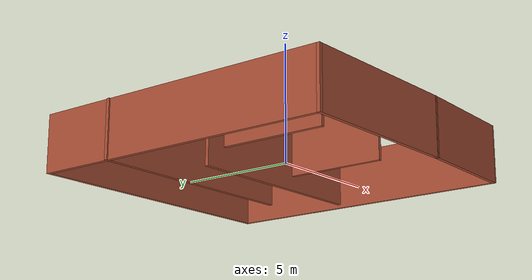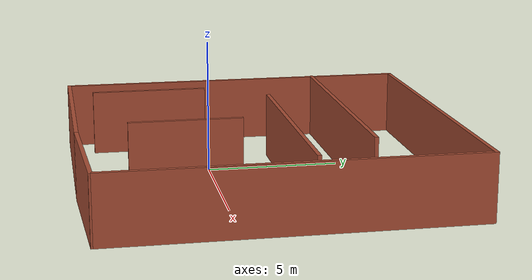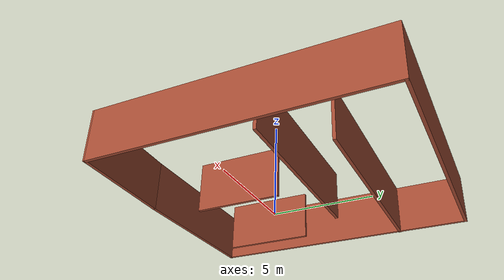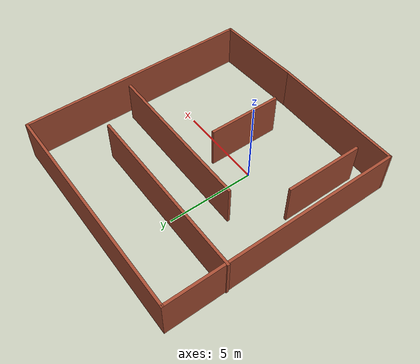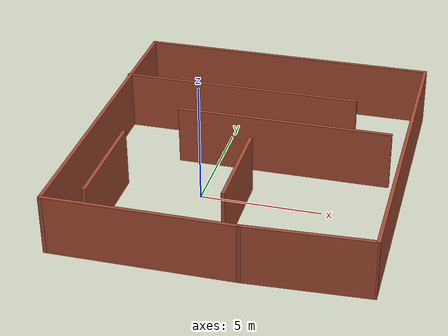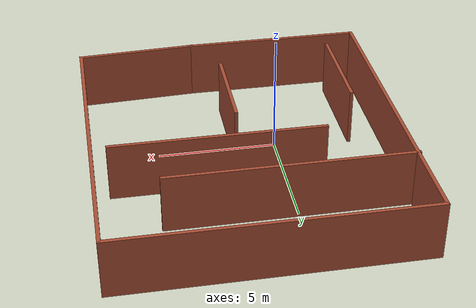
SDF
<?xml version='1.0'?>
<sdf version='1.7'>
  <model name='maze_map.world'>
    <pose>1.60349 1.70817 0 0 -0 0</pose>
    <link name='Wall_0'>
      <collision name='Wall_0_Collision'>
        <geometry>
          <box>
            <size>7.75 0.15 2.5</size>
          </box>
        </geometry>
        <pose>0 0 1.25 0 -0 0</pose>
      </collision>
      <visual name='Wall_0_Visual'>
        <pose>0 0 1.25 0 -0 0</pose>
        <geometry>
          <box>
            <size>7.75 0.15 2.5</size>
          </box>
        </geometry>
        <material>
          <script>
            <uri>file://media/materials/scripts/gazebo.material</uri>
            <name>Gazebo/Bricks</name>
          </script>
          <ambient>1 1 1 1</ambient>
        </material>
        <meta>
          <layer>0</layer>
        </meta>
      </visual>
      <pose>-2.47349 -6.79817 0 0 -0 3.14159</pose>
    </link>
    <link name='Wall_11'>
      <collision name='Wall_11_Collision'>
        <geometry>
          <box>
            <size>4.25 0.15 2.5</size>
          </box>
        </geometry>
        <pose>0 0 1.25 0 -0 0</pose>
      </collision>
      <visual name='Wall_11_Visual'>
        <pose>0 0 1.25 0 -0 0</pose>
        <geometry>
          <box>
            <size>4.25 0.15 2.5</size>
          </box>
        </geometry>
        <material>
          <script>
            <uri>file://media/materials/scripts/gazebo.material</uri>
            <name>Gazebo/Bricks</name>
          </script>
          <ambient>1 1 1 1</ambient>
        </material>
        <meta>
          <layer>0</layer>
        </meta>
      </visual>
      <pose>0.229714 -2.79319 0 0 -0 -1.5708</pose>
    </link>
    <link name='Wall_13'>
      <collision name='Wall_13_Collision'>
        <geometry>
          <box>
            <size>4.5 0.15 2.5</size>
          </box>
        </geometry>
        <pose>0 0 1.25 0 -0 0</pose>
      </collision>
      <visual name='Wall_13_Visual'>
        <pose>0 0 1.25 0 -0 0</pose>
        <geometry>
          <box>
            <size>4.5 0.15 2.5</size>
          </box>
        </geometry>
        <material>
          <script>
            <uri>file://media/materials/scripts/gazebo.material</uri>
            <name>Gazebo/Bricks</name>
          </script>
          <ambient>1 1 1 1</ambient>
        </material>
        <meta>
          <layer>0</layer>
        </meta>
      </visual>
      <pose>-4.88792 -3.66257 0 0 -0 -1.5708</pose>
    </link>
    <link name='Wall_2'>
      <collision name='Wall_2_Collision'>
        <geometry>
          <box>
            <size>13.75 0.15 2.5</size>
          </box>
        </geometry>
        <pose>0 0 1.25 0 -0 0</pose>
      </collision>
      <visual name='Wall_2_Visual'>
        <pose>0 0 1.25 0 -0 0</pose>
        <geometry>
          <box>
            <size>13.75 0.15 2.5</size>
          </box>
        </geometry>
        <material>
          <script>
            <uri>file://media/materials/scripts/gazebo.material</uri>
            <name>Gazebo/Bricks</name>
          </script>
          <ambient>1 1 1 1</ambient>
        </material>
        <meta>
          <layer>0</layer>
        </meta>
      </visual>
      <pose>-6.27349 0.001826 0 0 -0 1.5708</pose>
    </link>
    <link name='Wall_3'>
      <collision name='Wall_3_Collision'>
        <geometry>
          <box>
            <size>12.75 0.15 2.5</size>
          </box>
        </geometry>
        <pose>0 0 1.25 0 -0 0</pose>
      </collision>
      <visual name='Wall_3_Visual'>
        <pose>0 0 1.25 0 -0 0</pose>
        <geometry>
          <box>
            <size>12.75 0.15 2.5</size>
          </box>
        </geometry>
        <material>
          <script>
            <uri>file://media/materials/scripts/gazebo.material</uri>
            <name>Gazebo/Bricks</name>
          </script>
          <ambient>1 1 1 1</ambient>
        </material>
        <meta>
          <layer>0</layer>
        </meta>
      </visual>
      <pose>0.026506 6.80183 0 0 -0 0</pose>
    </link>
    <link name='Wall_4'>
      <collision name='Wall_4_Collision'>
        <geometry>
          <box>
            <size>13.5 0.15 2.5</size>
          </box>
        </geometry>
        <pose>0 0 1.25 0 -0 0</pose>
      </collision>
      <visual name='Wall_4_Visual'>
        <pose>0 0 1.25 0 -0 0</pose>
        <geometry>
          <box>
            <size>13.5 0.15 2.5</size>
          </box>
        </geometry>
        <material>
          <script>
            <uri>file://media/materials/scripts/gazebo.material</uri>
            <name>Gazebo/Bricks</name>
          </script>
          <ambient>1 1 1 1</ambient>
        </material>
        <meta>
          <layer>0</layer>
        </meta>
      </visual>
      <pose>6.32651 0.126826 0 0 -0 -1.5708</pose>
    </link>
    <link name='Wall_5'>
      <collision name='Wall_5_Collision'>
        <geometry>
          <box>
            <size>5.15625 0.15 2.5</size>
          </box>
        </geometry>
        <pose>0 0 1.25 0 -0 0</pose>
      </collision>
      <visual name='Wall_5_Visual'>
        <pose>0 0 1.25 0 -0 0</pose>
        <geometry>
          <box>
            <size>5.15625 0.15 2.5</size>
          </box>
        </geometry>
        <material>
          <script>
            <uri>file://media/materials/scripts/gazebo.material</uri>
            <name>Gazebo/Bricks</name>
          </script>
          <ambient>1 1 1 1</ambient>
        </material>
        <meta>
          <layer>0</layer>
        </meta>
      </visual>
      <pose>3.82651 -6.67317 0 0 -0 -3.09163</pose>
    </link>
    <link name='Wall_7'>
      <collision name='Wall_7_Collision'>
        <geometry>
          <box>
            <size>10.25 0.15 2.5</size>
          </box>
        </geometry>
        <pose>0 0 1.25 0 -0 0</pose>
      </collision>
      <visual name='Wall_7_Visual'>
        <pose>0 0 1.25 0 -0 0</pose>
        <geometry>
          <box>
            <size>10.25 0.15 2.5</size>
          </box>
        </geometry>
        <material>
          <script>
            <uri>file://media/materials/scripts/gazebo.material</uri>
            <name>Gazebo/Bricks</name>
          </script>
          <ambient>1 1 1 1</ambient>
        </material>
        <meta>
          <layer>0</layer>
        </meta>
      </visual>
      <pose>-1.28016 3.39744 0 0 -0 0</pose>
    </link>
    <link name='Wall_9'>
      <collision name='Wall_9_Collision'>
        <geometry>
          <box>
            <size>9 0.15 2.5</size>
          </box>
        </geometry>
        <pose>0 0 1.25 0 -0 0</pose>
      </collision>
      <visual name='Wall_9_Visual'>
        <pose>0 0 1.25 0 -0 0</pose>
        <geometry>
          <box>
            <size>9 0.15 2.5</size>
          </box>
        </geometry>
        <material>
          <script>
            <uri>file://media/materials/scripts/gazebo.material</uri>
            <name>Gazebo/Bricks</name>
          </script>
          <ambient>1 1 1 1</ambient>
        </material>
        <meta>
          <layer>0</layer>
        </meta>
      </visual>
      <pose>1.21194 0.931674 0 0 -0 0</pose>
    </link>
    <static>1</static>
  </model>
</sdf>
